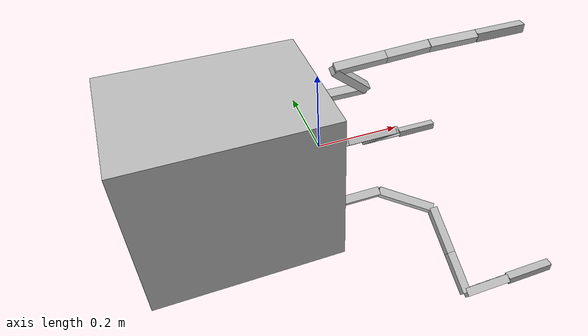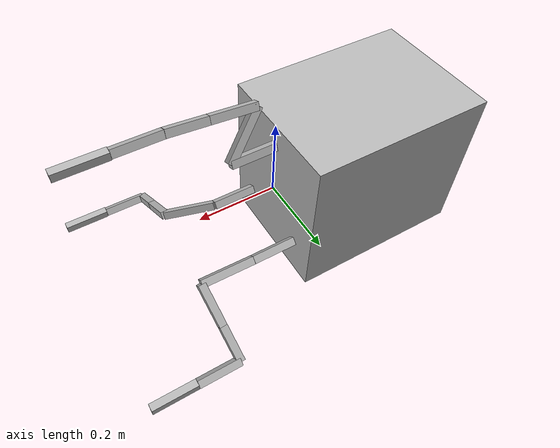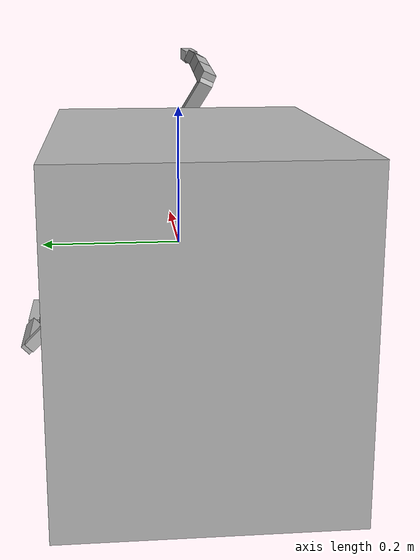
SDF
<?xml version="1.0" ?>
<sdf version="1.5">
<model name="four_bar_sdf">
<pose>0 0 0 0 0 0</pose>
<self_collide>true</self_collide>
<link name="linkROV">
<pose>-0.2286 0 0 0 0 0</pose>
<inertial>
<mass>1.0</mass>
<inertia>
<ixx>0.0227</ixx>
<iyy>0.0306</iyy>
<izz>0.0269</izz>
<ixy>0.0</ixy>
<ixz>0.0</ixz>
<iyz>0.0</iyz>
</inertia>
</inertial>
<collision name="linkROV_collision">
<geometry>
<box>
<size>0.4572 0.33805 0.39785</size>
</box>
</geometry>
</collision>
<visual name="linkROV_visual">
<geometry>
<box>
<size>0.4572 0.33805 0.39785</size>
</box>
</geometry>
<material>
<color rgba="0.3 0.3 0.3 1.0"/>
</material>
</visual>
</link>
<link name="arm1link1">
<pose>0.05750000 0.10000000 -0.10000000 -0.78452674 -0.00000000 0.00000000 </pose>
<inertial>
<mass>0.575</mass>
<inertia>
<ixx>3.8333e-05</ixx>
<iyy>6.5286e-04</iyy>
<izz>6.5286e-04</izz>
<ixy>0.0</ixy>
<ixz>0.0</ixz>
<iyz>0.0</iyz>
</inertia>
</inertial>
<collision name="arm1link1_collision">
<geometry>
<box>
<size>0.115 0.02 0.02</size>
</box>
</geometry>
</collision>
<visual name="arm1link1_visual">
<geometry>
<box>
<size>0.115 0.02 0.02</size>
</box>
</geometry>
<material>
<color rgba="0.3 0.3 0.3 1.0"/>
</material>
</visual>
</link>
<link name="arm1link2">
<pose>0.18499151 0.09922836 -0.09922971 -0.78446608 -0.01100443 -0.01102429 </pose>
<inertial>
<mass>0.700</mass>
<inertia>
<ixx>4.6667e-05</ixx>
<iyy>1.1667e-03</iyy>
<izz>1.1667e-03</izz>
<ixy>0.0</ixy>
<ixz>0.0</ixz>
<iyz>0.0</iyz>
</inertia>
</inertial>
<collision name="arm1link2_collision">
<geometry>
<box>
<size>0.140 0.02 0.02</size>
</box>
</geometry>
</collision>
<visual name="arm1link2_visual">
<geometry>
<box>
<size>0.140 0.02 0.02</size>
</box>
</geometry>
<material>
<color rgba="0.3 0.3 0.3 1.0"/>
</material>
</visual>
</link>
<link name="arm1link3">
<pose>0.24999765 0.13899754 -0.13892963 0.08633594 0.78077460 1.69315364 </pose>
<inertial>
<mass>0.575</mass>
<inertia>
<ixx>3.8333e-05</ixx>
<iyy>6.5286e-04</iyy>
<izz>6.5286e-04</izz>
<ixy>0.0</ixy>
<ixz>0.0</ixz>
<iyz>0.0</iyz>
</inertia>
</inertial>
<collision name="arm1link3_collision">
<geometry>
<box>
<size>0.115 0.02 0.02</size>
</box>
</geometry>
</collision>
<visual name="arm1link3_visual">
<geometry>
<box>
<size>0.115 0.02 0.02</size>
</box>
</geometry>
<material>
<color rgba="0.3 0.3 0.3 1.0"/>
</material>
</visual>
</link>
<link name="arm1link4">
<pose>0.24067718 0.21479123 -0.21459134 0.08641811 0.78077460 1.69315364 </pose>
<inertial>
<mass>0.500</mass>
<inertia>
<ixx>3.3333e-05</ixx>
<iyy>4.3333e-04</iyy>
<izz>4.3333e-04</izz>
<ixy>0.0</ixy>
<ixz>0.0</ixz>
<iyz>0.0</iyz>
</inertia>
</inertial>
<collision name="arm1link4_collision">
<geometry>
<box>
<size>0.100 0.02 0.02</size>
</box>
</geometry>
</collision>
<visual name="arm1link4_visual">
<geometry>
<box>
<size>0.100 0.02 0.02</size>
</box>
</geometry>
<material>
<color rgba="0.3 0.3 0.3 1.0"/>
</material>
</visual>
</link>
<link name="arm1link5">
<pose>0.29384207 0.25004847 -0.24979384 -0.78453385 0.00019129 0.00007574 </pose>
<inertial>
<mass>0.575</mass>
<inertia>
<ixx>3.8333e-05</ixx>
<iyy>6.5286e-04</iyy>
<izz>6.5286e-04</izz>
<ixy>0.0</ixy>
<ixz>0.0</ixz>
<iyz>0.0</iyz>
</inertia>
</inertial>
<collision name="arm1link5_collision">
<geometry>
<box>
<size>0.115 0.02 0.02</size>
</box>
</geometry>
</collision>
<visual name="arm1link5_visual">
<geometry>
<box>
<size>0.115 0.02 0.02</size>
</box>
</geometry>
<material>
<color rgba="0.3 0.3 0.3 1.0"/>
</material>
</visual>
</link>
<link name="arm1link6">
<pose>0.41134207 0.25005737 -0.24981631 -0.00009510 0.00019129 0.00007574 </pose>
<inertial>
<mass>0.600</mass>
<inertia>
<ixx>4.0000e-05</ixx>
<iyy>7.4000e-04</iyy>
<izz>7.4000e-04</izz>
<ixy>0.0</ixy>
<ixz>0.0</ixz>
<iyz>0.0</iyz>
</inertia>
</inertial>
<collision name="arm1link6_collision">
<geometry>
<box>
<size>0.120 0.02 0.02</size>
</box>
</geometry>
</collision>
<visual name="arm1link6_visual">
<geometry>
<box>
<size>0.120 0.02 0.02</size>
</box>
</geometry>
<material>
<color rgba="0.3 0.3 0.3 1.0"/>
</material>
</visual>
</link>
<link name="arm2link1">
<pose>0.05750000 -0.10000000 -0.10000000 -2.60230000 0.00000000 0.00000000 </pose>
<inertial>
<mass>0.575</mass>
<inertia>
<ixx>3.8333e-05</ixx>
<iyy>6.5286e-04</iyy>
<izz>6.5286e-04</izz>
<ixy>0.0</ixy>
<ixz>0.0</ixz>
<iyz>0.0</iyz>
</inertia>
</inertial>
<collision name="arm2link1_collision">
<geometry>
<box>
<size>0.115 0.02 0.02</size>
</box>
</geometry>
</collision>
<visual name="arm2link1_visual">
<geometry>
<box>
<size>0.115 0.02 0.02</size>
</box>
</geometry>
<material>
<color rgba="0.3 0.3 0.3 1.0"/>
</material>
</visual>
</link>
<link name="arm2link2">
<pose>0.17335000 -0.13318000 -0.11986000 -2.67880000 0.28765000 -0.51705000 </pose>
<inertial>
<mass>0.700</mass>
<inertia>
<ixx>4.6667e-05</ixx>
<iyy>1.1667e-03</iyy>
<izz>1.1667e-03</izz>
<ixy>0.0</ixy>
<ixz>0.0</ixz>
<iyz>0.0</iyz>
</inertia>
</inertial>
<collision name="arm2link2_collision">
<geometry>
<box>
<size>0.140 0.02 0.02</size>
</box>
</geometry>
</collision>
<visual name="arm2link2_visual">
<geometry>
<box>
<size>0.140 0.02 0.02</size>
</box>
</geometry>
<material>
<color rgba="0.3 0.3 0.3 1.0"/>
</material>
</visual>
</link>
<link name="arm2link3">
<pose>0.23285000 -0.21569000 -0.16924000 -3.12960000 0.53920000 -1.54750000 </pose>
<inertial>
<mass>0.575</mass>
<inertia>
<ixx>3.8333e-05</ixx>
<iyy>6.5286e-04</iyy>
<izz>6.5286e-04</izz>
<ixy>0.0</ixy>
<ixz>0.0</ixz>
<iyz>0.0</iyz>
</inertia>
</inertial>
<collision name="arm2link3_collision">
<geometry>
<box>
<size>0.115 0.02 0.02</size>
</box>
</geometry>
</collision>
<visual name="arm2link3_visual">
<geometry>
<box>
<size>0.115 0.02 0.02</size>
</box>
</geometry>
<material>
<color rgba="0.3 0.3 0.3 1.0"/>
</material>
</visual>
</link>
<link name="arm2link4">
<pose>0.23500000 -0.30791000 -0.22444000 -3.12940000 0.53920000 -1.54750000 </pose>
<inertial>
<mass>0.500</mass>
<inertia>
<ixx>3.3333e-05</ixx>
<iyy>4.3333e-04</iyy>
<izz>4.3333e-04</izz>
<ixy>0.0</ixy>
<ixz>0.0</ixz>
<iyz>0.0</iyz>
</inertia>
</inertial>
<collision name="arm2link4_collision">
<geometry>
<box>
<size>0.100 0.02 0.02</size>
</box>
</geometry>
</collision>
<visual name="arm2link4_visual">
<geometry>
<box>
<size>0.100 0.02 0.02</size>
</box>
</geometry>
<material>
<color rgba="0.3 0.3 0.3 1.0"/>
</material>
</visual>
</link>
<link name="arm2link5">
<pose>0.29350000 -0.35078000 -0.25008000 -2.60230000 -0.00055858 0.00050968 </pose>
<inertial>
<mass>0.575</mass>
<inertia>
<ixx>3.8333e-05</ixx>
<iyy>6.5286e-04</iyy>
<izz>6.5286e-04</izz>
<ixy>0.0</ixy>
<ixz>0.0</ixz>
<iyz>0.0</iyz>
</inertia>
</inertial>
<collision name="arm2link5_collision">
<geometry>
<box>
<size>0.115 0.02 0.02</size>
</box>
</geometry>
</collision>
<visual name="arm2link5_visual">
<geometry>
<box>
<size>0.115 0.02 0.02</size>
</box>
</geometry>
<material>
<color rgba="0.3 0.3 0.3 1.0"/>
</material>
</visual>
</link>
<link name="arm2link6">
<pose>0.41100000 -0.35072000 -0.25001000 0.00032791 -0.00055858 0.00050968 </pose>
<inertial>
<mass>0.600</mass>
<inertia>
<ixx>4.0000e-05</ixx>
<iyy>7.4000e-04</iyy>
<izz>7.4000e-04</izz>
<ixy>0.0</ixy>
<ixz>0.0</ixz>
<iyz>0.0</iyz>
</inertia>
</inertial>
<collision name="arm2link6_collision">
<geometry>
<box>
<size>0.120 0.02 0.02</size>
</box>
</geometry>
</collision>
<visual name="arm2link6_visual">
<geometry>
<box>
<size>0.120 0.02 0.02</size>
</box>
</geometry>
<material>
<color rgba="0.3 0.3 0.3 1.0"/>
</material>
</visual>
</link>
<link name="arm3link1">
<pose>0.05750000 0.00000000 0.14142000 -1.13840000 0.00000000 0.00000000 </pose>
<inertial>
<mass>0.575</mass>
<inertia>
<ixx>3.8333e-05</ixx>
<iyy>6.5286e-04</iyy>
<izz>6.5286e-04</izz>
<ixy>0.0</ixy>
<ixz>0.0</ixz>
<iyz>0.0</iyz>
</inertia>
</inertial>
<collision name="arm3link1_collision">
<geometry>
<box>
<size>0.115 0.02 0.02</size>
</box>
</geometry>
</collision>
<visual name="arm3link1_visual">
<geometry>
<box>
<size>0.115 0.02 0.02</size>
</box>
</geometry>
<material>
<color rgba="0.3 0.3 0.3 1.0"/>
</material>
</visual>
</link>
<link name="arm3link2">
<pose>0.06845700 -0.02191200 0.18889000 0.96397000 -0.74527000 -2.70160000 </pose>
<inertial>
<mass>0.700</mass>
<inertia>
<ixx>4.6667e-05</ixx>
<iyy>1.1667e-03</iyy>
<izz>1.1667e-03</izz>
<ixy>0.0</ixy>
<ixz>0.0</ixz>
<iyz>0.0</iyz>
</inertia>
</inertial>
<collision name="arm3link2_collision">
<geometry>
<box>
<size>0.140 0.02 0.02</size>
</box>
</geometry>
</collision>
<visual name="arm3link2_visual">
<geometry>
<box>
<size>0.140 0.02 0.02</size>
</box>
</geometry>
<material>
<color rgba="0.3 0.3 0.3 1.0"/>
</material>
</visual>
</link>
<link name="arm3link3">
<pose>0.07927600 -0.04548400 0.23996000 -1.13740000 -0.06259900 -0.02893600 </pose>
<inertial>
<mass>0.575</mass>
<inertia>
<ixx>3.8333e-05</ixx>
<iyy>6.5286e-04</iyy>
<izz>6.5286e-04</izz>
<ixy>0.0</ixy>
<ixz>0.0</ixz>
<iyz>0.0</iyz>
</inertia>
</inertial>
<collision name="arm3link3_collision">
<geometry>
<box>
<size>0.115 0.02 0.02</size>
</box>
</geometry>
</collision>
<visual name="arm3link3_visual">
<geometry>
<box>
<size>0.115 0.02 0.02</size>
</box>
</geometry>
<material>
<color rgba="0.3 0.3 0.3 1.0"/>
</material>
</visual>
</link>
<link name="arm3link4">
<pose>0.18652000 -0.04858900 0.24669000 2.00340000 -0.06259900 -0.02893600 </pose>
<inertial>
<mass>0.500</mass>
<inertia>
<ixx>3.3333e-05</ixx>
<iyy>4.3333e-04</iyy>
<izz>4.3333e-04</izz>
<ixy>0.0</ixy>
<ixz>0.0</ixz>
<iyz>0.0</iyz>
</inertia>
</inertial>
<collision name="arm3link4_collision">
<geometry>
<box>
<size>0.100 0.02 0.02</size>
</box>
</geometry>
</collision>
<visual name="arm3link4_visual">
<geometry>
<box>
<size>0.100 0.02 0.02</size>
</box>
</geometry>
<material>
<color rgba="0.3 0.3 0.3 1.0"/>
</material>
</visual>
</link>
<link name="arm3link5">
<pose>0.29390000 -0.05005300 0.24985000 2.00250000 -0.00067302 -0.00036328 </pose>
<inertial>
<mass>0.575</mass>
<inertia>
<ixx>3.8333e-05</ixx>
<iyy>6.5286e-04</iyy>
<izz>6.5286e-04</izz>
<ixy>0.0</ixy>
<ixz>0.0</ixz>
<iyz>0.0</iyz>
</inertia>
</inertial>
<collision name="arm3link5_collision">
<geometry>
<box>
<size>0.115 0.02 0.02</size>
</box>
</geometry>
</collision>
<visual name="arm3link5_visual">
<geometry>
<box>
<size>0.115 0.02 0.02</size>
</box>
</geometry>
<material>
<color rgba="0.3 0.3 0.3 1.0"/>
</material>
</visual>
</link>
<link name="arm3link6">
<pose>0.41140000 -0.05009600 0.24993000 -0.00004751 -0.00067302 -0.00036328 </pose>
<inertial>
<mass>0.600</mass>
<inertia>
<ixx>4.0000e-05</ixx>
<iyy>7.4000e-04</iyy>
<izz>7.4000e-04</izz>
<ixy>0.0</ixy>
<ixz>0.0</ixz>
<iyz>0.0</iyz>
</inertia>
</inertial>
<collision name="arm3link6_collision">
<geometry>
<box>
<size>0.120 0.02 0.02</size>
</box>
</geometry>
</collision>
<visual name="arm3link6_visual">
<geometry>
<box>
<size>0.120 0.02 0.02</size>
</box>
</geometry>
<material>
<color rgba="0.3 0.3 0.3 1.0"/>
</material>
</visual>
</link>
<joint name="arm1_jointgrip" type="fixed">
<pose>0 0 0 0 0 0</pose>
<parent>world</parent>
<child>arm1link6</child>
</joint>
<joint name="arm1_joint1" type="revolute">
<pose>0 0 0 0 0 0</pose>
<parent>linkROV</parent>
<child>arm1link1</child>
<axis>
<xyz>1 0 0</xyz>
<dynamics>
<damping>0.05</damping>
<friction>0</friction>
<spring_reference>0</spring_reference>
<spring_stiffness>10.0</spring_stiffness>
</dynamics>
</axis>
</joint>
<joint name="arm1_joint2" type="revolute">
<pose>-0.07 0 0 0 0 0</pose>
<parent>arm1link1</parent>
<child>arm1link2</child>
<axis>
<xyz>0 0 1</xyz>
<dynamics>
<damping>0.05</damping>
<friction>0</friction>
<spring_reference>0</spring_reference>
<spring_stiffness>10.0</spring_stiffness>
</dynamics>
</axis>
</joint>
<joint name="arm1_joint3" type="revolute">
<pose>-0.0575 0 0 0 0 0</pose>
<parent>arm1link2</parent>
<child>arm1link3</child>
<axis>
<xyz>0 0 1</xyz>
<dynamics>
<damping>0.05</damping>
<friction>0</friction>
<spring_reference>0</spring_reference>
<spring_stiffness>10.0</spring_stiffness>
</dynamics>
</axis>
</joint>
<joint name="arm1_joint4" type="revolute">
<pose>-0.05 0 0 0 0 0</pose>
<parent>arm1link3</parent>
<child>arm1link4</child>
<axis>
<xyz>1 0 0</xyz>
<dynamics>
<damping>0.05</damping>
<friction>0</friction>
<spring_reference>0</spring_reference>
<spring_stiffness>10.0</spring_stiffness>
</dynamics>
</axis>
</joint>
<joint name="arm1_joint5" type="revolute">
<pose>-0.0575 0 0 0 0 0</pose>
<parent>arm1link4</parent>
<child>arm1link5</child>
<axis>
<xyz>0 0 1</xyz>
<dynamics>
<damping>0.05</damping>
<friction>0</friction>
<spring_reference>0</spring_reference>
<spring_stiffness>10.0</spring_stiffness>
</dynamics>
</axis>
</joint>
<joint name="arm1_joint6" type="revolute">
<pose>-0.06 0 0 0 0 0</pose>
<parent>arm1link5</parent>
<child>arm1link6</child>
<axis>
<xyz>1 0 0</xyz>
<dynamics>
<damping>0.05</damping>
<friction>0</friction>
<spring_reference>0</spring_reference>
<spring_stiffness>10.0</spring_stiffness>
</dynamics>
</axis>
</joint>
<joint name="arm2_jointgrip" type="fixed">
<pose>0 0 0 0 0 0</pose>
<parent>world</parent>
<child>arm2link6</child>
</joint>
<joint name="arm2_joint1" type="revolute">
<pose>0 0 0 0 0 0</pose>
<parent>linkROV</parent>
<child>arm2link1</child>
<axis>
<xyz>1 0 0</xyz>
<dynamics>
<damping>0.05</damping>
<friction>0</friction>
<spring_reference>0</spring_reference>
<spring_stiffness>10.0</spring_stiffness>
</dynamics>
</axis>
</joint>
<joint name="arm2_joint2" type="revolute">
<pose>-0.07 0 0 0 0 0</pose>
<parent>arm2link1</parent>
<child>arm2link2</child>
<axis>
<xyz>0 0 1</xyz>
<dynamics>
<damping>0.05</damping>
<friction>0</friction>
<spring_reference>0</spring_reference>
<spring_stiffness>10.0</spring_stiffness>
</dynamics>
</axis>
</joint>
<joint name="arm2_joint3" type="revolute">
<pose>-0.0575 0 0 0 0 0</pose>
<parent>arm2link2</parent>
<child>arm2link3</child>
<axis>
<xyz>0 0 1</xyz>
<dynamics>
<damping>0.05</damping>
<friction>0</friction>
<spring_reference>0</spring_reference>
<spring_stiffness>10.0</spring_stiffness>
</dynamics>
</axis>
</joint>
<joint name="arm2_joint4" type="revolute">
<pose>-0.05 0 0 0 0 0</pose>
<parent>arm2link3</parent>
<child>arm2link4</child>
<axis>
<xyz>1 0 0</xyz>
<dynamics>
<damping>0.05</damping>
<friction>0</friction>
<spring_reference>0</spring_reference>
<spring_stiffness>10.0</spring_stiffness>
</dynamics>
</axis>
</joint>
<joint name="arm2_joint5" type="revolute">
<pose>-0.0575 0 0 0 0 0</pose>
<parent>arm2link4</parent>
<child>arm2link5</child>
<axis>
<xyz>0 0 1</xyz>
<dynamics>
<damping>0.05</damping>
<friction>0</friction>
<spring_reference>0</spring_reference>
<spring_stiffness>10.0</spring_stiffness>
</dynamics>
</axis>
</joint>
<joint name="arm2_joint6" type="revolute">
<pose>-0.06 0 0 0 0 0</pose>
<parent>arm2link5</parent>
<child>arm2link6</child>
<axis>
<xyz>1 0 0</xyz>
<dynamics>
<damping>0.05</damping>
<friction>0</friction>
<spring_reference>0</spring_reference>
<spring_stiffness>10.0</spring_stiffness>
</dynamics>
</axis>
</joint>
<joint name="arm3_jointgrip" type="fixed">
<pose>0 0 0 0 0 0</pose>
<parent>world</parent>
<child>arm3link6</child>
</joint>
<joint name="arm3_joint1" type="revolute">
<pose>0 0 0 0 0 0</pose>
<parent>linkROV</parent>
<child>arm3link1</child>
<axis>
<xyz>1 0 0</xyz>
<dynamics>
<damping>0.05</damping>
<friction>0</friction>
<spring_reference>0</spring_reference>
<spring_stiffness>10.0</spring_stiffness>
</dynamics>
</axis>
</joint>
<joint name="arm3_joint2" type="revolute">
<pose>-0.07 0 0 0 0 0</pose>
<parent>arm3link1</parent>
<child>arm3link2</child>
<axis>
<xyz>0 0 1</xyz>
<dynamics>
<damping>0.05</damping>
<friction>0</friction>
<spring_reference>0</spring_reference>
<spring_stiffness>10.0</spring_stiffness>
</dynamics>
</axis>
</joint>
<joint name="arm3_joint3" type="revolute">
<pose>-0.0575 0 0 0 0 0</pose>
<parent>arm3link2</parent>
<child>arm3link3</child>
<axis>
<xyz>0 0 1</xyz>
<dynamics>
<damping>0.05</damping>
<friction>0</friction>
<spring_reference>0</spring_reference>
<spring_stiffness>10.0</spring_stiffness>
</dynamics>
</axis>
</joint>
<joint name="arm3_joint4" type="revolute">
<pose>-0.05 0 0 0 0 0</pose>
<parent>arm3link3</parent>
<child>arm3link4</child>
<axis>
<xyz>1 0 0</xyz>
<dynamics>
<damping>0.05</damping>
<friction>0</friction>
<spring_reference>0</spring_reference>
<spring_stiffness>10.0</spring_stiffness>
</dynamics>
</axis>
</joint>
<joint name="arm3_joint5" type="revolute">
<pose>-0.0575 0 0 0 0 0</pose>
<parent>arm3link4</parent>
<child>arm3link5</child>
<axis>
<xyz>0 0 1</xyz>
<dynamics>
<damping>0.05</damping>
<friction>0</friction>
<spring_reference>0</spring_reference>
<spring_stiffness>10.0</spring_stiffness>
</dynamics>
</axis>
</joint>
<joint name="arm3_joint6" type="revolute">
<pose>-0.06 0 0 0 0 0</pose>
<parent>arm3link5</parent>
<child>arm3link6</child>
<axis>
<xyz>1 0 0</xyz>
<dynamics>
<damping>0.05</damping>
<friction>0</friction>
<spring_reference>0</spring_reference>
<spring_stiffness>10.0</spring_stiffness>
</dynamics>
</axis>
</joint>
</model>
</sdf>
